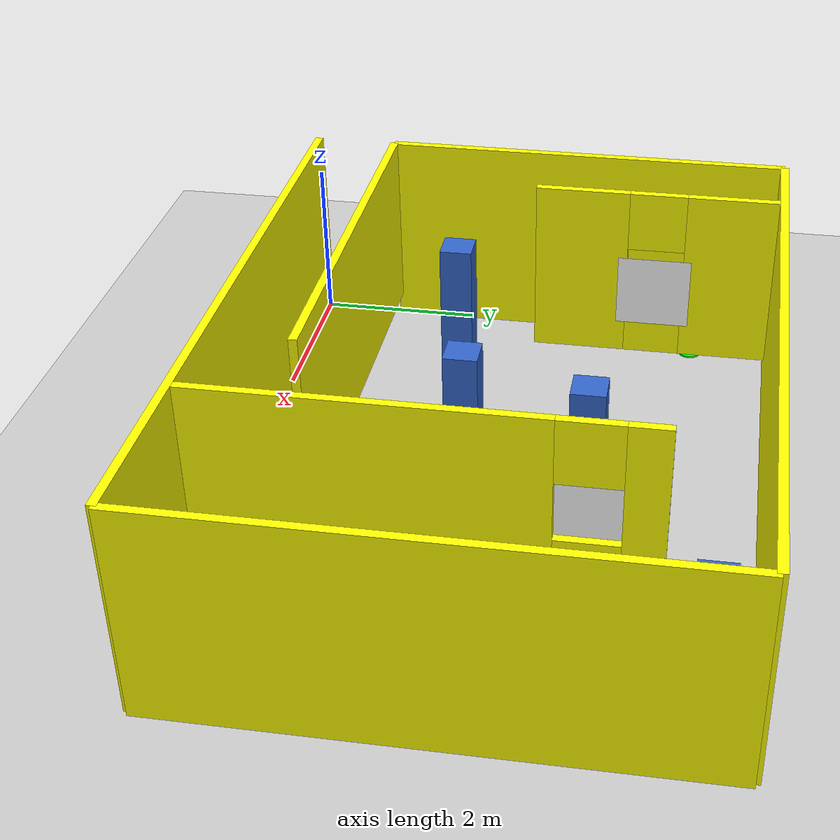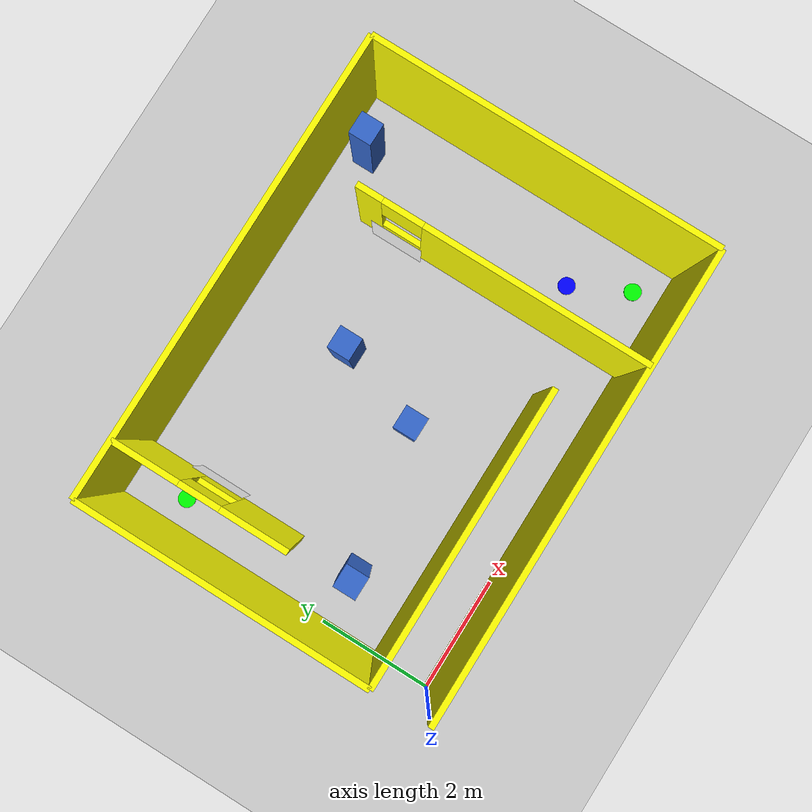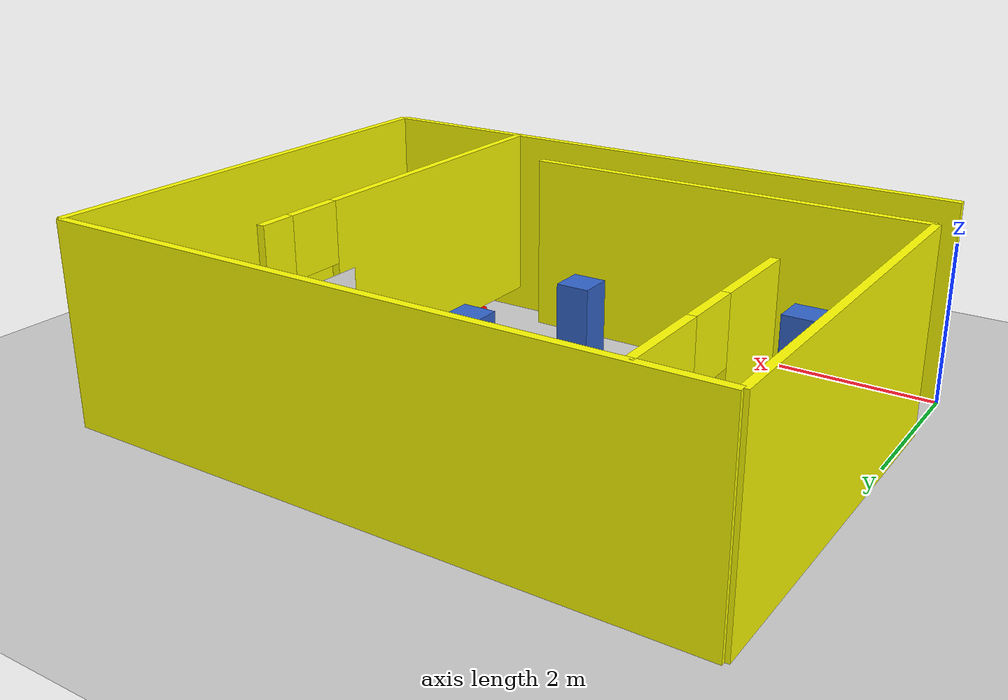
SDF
<sdf version="1.9">
 <world name="drone_competition_v1">
  <physics type="ode">
   <max_step_size>0.004</max_step_size>
   <real_time_factor>1.0</real_time_factor>
   <real_time_update_rate>250</real_time_update_rate>
  </physics>
  <gravity>0 0 -9.8</gravity>
  <magnetic_field>6e-06 2.3e-05 -4.2e-05</magnetic_field>
  <atmosphere type="adiabatic"/>
  <scene>
   <grid>false</grid>
   <ambient>0.4 0.4 0.4 1</ambient>
   <background>0.7 0.7 0.7 1</background>
   <shadows>true</shadows>
  </scene>
  <model name="ground_plane">
   <static>true</static>
   <link name="link">
    <collision name="collision">
     <geometry><plane><normal>0 0 1</normal><size>1 1</size></plane></geometry>
    </collision>
    <visual name="visual">
     <geometry><plane><normal>0 0 1</normal><size>500 500</size></plane></geometry>
     <material>
      <ambient>0.8 0.8 0.8 1</ambient>
      <diffuse>0.8 0.8 0.8 1</diffuse>
      <specular>0.8 0.8 0.8 1</specular>
     </material>
    </visual>
    <inertial>
     <mass>1</mass>
     <inertia><ixx>1</ixx><ixy>0</ixy><ixz>0</ixz><iyy>1</iyy><iyz>0</iyz><izz>1</izz></inertia>
    </inertial>
   </link>
  </model>
  <model name="boundary">
   <static>true</static>
   <link name="walls">
    <collision name="south">
     <pose>4 0 1.25 0 0 0</pose>
     <geometry><box><size>8 0.1 2.5</size></box></geometry>
    </collision>
    <visual name="south_v">
     <pose>4 0 1.25 0 0 0</pose>
     <geometry><box><size>8 0.1 2.5</size></box></geometry>
     <material><ambient>1 1 0 1</ambient><diffuse>1 1 0 1</diffuse><specular>0.1 0.1 0.1 1</specular></material>
    </visual>
    <collision name="north">
     <pose>4 6 1.25 0 0 0</pose>
     <geometry><box><size>8 0.1 2.5</size></box></geometry>
    </collision>
    <visual name="north_v">
     <pose>4 6 1.25 0 0 0</pose>
     <geometry><box><size>8 0.1 2.5</size></box></geometry>
     <material><ambient>1 1 0 1</ambient><diffuse>1 1 0 1</diffuse></material>
    </visual>
    <collision name="west">
     <pose>0 3.5 1.25 0 0 0</pose>
     <geometry><box><size>0.1 5 2.5</size></box></geometry>
    </collision>
    <visual name="west_v">
     <pose>0 3.5 1.25 0 0 0</pose>
     <geometry><box><size>0.1 5 2.5</size></box></geometry>
     <material><ambient>1 1 0 1</ambient><diffuse>1 1 0 1</diffuse></material>
    </visual>
    <collision name="east">
     <pose>8 3 1.25 0 0 0</pose>
     <geometry><box><size>0.1 6 2.5</size></box></geometry>
    </collision>
    <visual name="east_v">
     <pose>8 3 1.25 0 0 0</pose>
     <geometry><box><size>0.1 6 2.5</size></box></geometry>
     <material><ambient>1 1 0 1</ambient><diffuse>1 1 0 1</diffuse></material>
    </visual>
   </link>
  </model>
  <model name="partition_walls">
   <static>true</static>
   <link name="wall_a">
    <pose>2.5 1 1.4 0 0 0</pose>
    <collision name="c"><geometry><box><size>5.0 0.1 2.2</size></box></geometry></collision>
    <visual name="v">
     <geometry><box><size>5.0 0.1 2.2</size></box></geometry>
     <material><ambient>1 1 0 1</ambient><diffuse>1 1 0 1</diffuse><specular>0.1 0.1 0.1 1</specular></material>
    </visual>
   </link>
   <visual name="door_frame_front">
    <pose>-0.051 1.7 0 0 0 0</pose>
    <geometry><box><size>0.001 1.2 1.2</size></box></geometry>
    <material><pbr><metal><albedo_map>door.png</albedo_map></metal></pbr></material>
   </visual>
   <link name="wall_b">
    <pose>6 2.5 1.4 0 0 0</pose>
    <collision name="collision_left">
     <pose>0 -0.575 0 0 0 0</pose>
     <geometry><box><size>0.1 3.85 2.2</size></box></geometry>
    </collision>
    <visual name="visual_left">
     <pose>0 -0.575 0 0 0 0</pose>
     <geometry><box><size>0.1 3.85 2.2</size></box></geometry>
     <material><ambient>1 1 0 1</ambient><diffuse>1 1 0 1</diffuse></material>
    </visual>
    <collision name="collision_right">
     <pose>0 2.275 0 0 0 0</pose>
     <geometry><box><size>0.1 0.45 2.2</size></box></geometry>
    </collision>
    <visual name="visual_right">
     <pose>0 2.275 0 0 0 0</pose>
     <geometry><box><size>0.1 0.45 2.2</size></box></geometry>
     <material><ambient>1 1 0 1</ambient><diffuse>1 1 0 1</diffuse></material>
    </visual>
    <collision name="collision_top">
     <pose>0 1.7 0.725 0 0 0</pose>
     <geometry><box><size>0.1 0.7 0.75</size></box></geometry>
    </collision>
    <visual name="visual_top">
     <pose>0 1.7 0.725 0 0 0</pose>
     <geometry><box><size>0.1 0.7 0.75</size></box></geometry>
     <material><ambient>1 1 0 1</ambient><diffuse>1 1 0 1</diffuse></material>
    </visual>
    <collision name="collision_bottom">
     <pose>0 1.7 -0.725 0 0 0</pose>
     <geometry><box><size>0.1 0.7 0.75</size></box></geometry>
    </collision>
    <visual name="visual_bottom">
     <pose>0 1.7 -0.725 0 0 0</pose>
     <geometry><box><size>0.1 0.7 0.75</size></box></geometry>
     <material><ambient>1 1 0 1</ambient><diffuse>1 1 0 1</diffuse></material>
    </visual>
   </link>
   <link name="wall_c">
    <pose>1 4.5 1.4 0 0 0</pose>
    <collision name="collision_left">
     <pose>0 -0.925 0 0 0 0</pose>
     <geometry><box><size>0.1 1.15 2.2</size></box></geometry>
    </collision>
    <visual name="visual_left">
     <pose>0 -0.925 0 0 0 0</pose>
     <geometry><box><size>0.1 1.15 2.2</size></box></geometry>
     <material><ambient>1 1 0 1</ambient><diffuse>1 1 0 1</diffuse></material>
    </visual>
    <collision name="collision_right">
     <pose>0 0.925 0 0 0 0</pose>
     <geometry><box><size>0.1 1.15 2.2</size></box></geometry>
    </collision>
    <visual name="visual_right">
     <pose>0 0.925 0 0 0 0</pose>
     <geometry><box><size>0.1 1.15 2.2</size></box></geometry>
     <material><ambient>1 1 0 1</ambient><diffuse>1 1 0 1</diffuse></material>
    </visual>
    <collision name="collision_top">
     <pose>0 0 0.725 0 0 0</pose>
     <geometry><box><size>0.1 0.7 0.75</size></box></geometry>
    </collision>
    <visual name="visual_top">
     <pose>0 0 0.725 0 0 0</pose>
     <geometry><box><size>0.1 0.7 0.75</size></box></geometry>
     <material><ambient>1 1 0 1</ambient><diffuse>1 1 0 1</diffuse></material>
    </visual>
    <collision name="collision_bottom">
     <pose>0 0 -0.725 0 0 0</pose>
     <geometry><box><size>0.1 0.7 0.75</size></box></geometry>
    </collision>
    <visual name="visual_bottom">
     <pose>0 0 -0.725 0 0 0</pose>
     <geometry><box><size>0.1 0.7 0.75</size></box></geometry>
     <material><ambient>1 1 0 1</ambient><diffuse>1 1 0 1</diffuse></material>
    </visual>
   </link>
  </model>
  <model name="static_obstacles">
   <static>true</static>
   <link name="O1">
    <pose>1.0 2.0 0.8 0 0 0</pose>
    <collision name="c"><geometry><box><size>0.4 0.4 1.6</size></box></geometry></collision>
    <visual name="v">
     <geometry><box><size>0.4 0.4 1.6</size></box></geometry>
     <material>
      <ambient>0.2 0.4 0.8 1</ambient>
      <diffuse>0.2 0.4 0.8 1</diffuse>
      <specular>0.1 0.1 0.1 1</specular>
     </material>
    </visual>
   </link>
   <link name="O3">
    <pose>4.0 4.0 0.8 0 0 0</pose>
    <collision name="c"><geometry><box><size>0.4 0.4 1.6</size></box></geometry></collision>
    <visual name="v">
     <geometry><box><size>0.4 0.4 1.6</size></box></geometry>
     <material>
      <ambient>0.2 0.4 0.8 1</ambient>
      <diffuse>0.2 0.4 0.8 1</diffuse>
      <specular>0.1 0.1 0.1 1</specular>
     </material>
    </visual>
   </link>
   <link name="O4">
    <pose>3.5 2.5 0.8 0 0 0</pose>
    <collision name="c"><geometry><box><size>0.4 0.4 1.6</size></box></geometry></collision>
    <visual name="v">
     <geometry><box><size>0.4 0.4 1.6</size></box></geometry>
     <material>
      <ambient>0.2 0.4 0.8 1</ambient>
      <diffuse>0.2 0.4 0.8 1</diffuse>
      <specular>0.1 0.1 0.1 1</specular>
     </material>
    </visual>
   </link>
   <link name="O5">
    <pose>7.0 5.5 0.8 0 0 0</pose>
    <collision name="c"><geometry><box><size>0.4 0.4 1.6</size></box></geometry></collision>
    <visual name="v">
     <geometry><box><size>0.4 0.4 1.6</size></box></geometry>
     <material>
      <ambient>0.2 0.4 0.8 1</ambient>
      <diffuse>0.2 0.4 0.8 1</diffuse>
      <specular>0.1 0.1 0.1 1</specular>
     </material>
    </visual>
   </link>
  </model>
  <model name="Area_A_Task">
   <static>true</static>
   <pose>0.5 5.0 0.011 0 0 0</pose>
   <link name="target_pad">
    <visual name="v">
     <geometry><cylinder><radius>0.15</radius><length>0.02</length></cylinder></geometry>
     <material><ambient>0 1 0 1</ambient><diffuse>0 1 0 1</diffuse><specular>0.1 0.1 0.1 1</specular></material>
    </visual>
   </link>
  </model>
  <model name="Area_B_Task">
   <static>true</static>
   <link name="red_circle">
    <pose>6.4 0.5 0.01 0 0 0</pose>
    <visual name="v">
     <geometry><cylinder><radius>0.15</radius><length>0.02</length></cylinder></geometry>
     <material><ambient>1 0 0 1</ambient><diffuse>1 0 0 1</diffuse></material>
    </visual>
   </link>
   <link name="green_circle">
    <pose>7.4 0.5 0.01 0 0 0</pose>
    <visual name="v">
     <geometry><cylinder><radius>0.15</radius><length>0.02</length></cylinder></geometry>
     <material><ambient>0 1 0 1</ambient><diffuse>0 1 0 1</diffuse></material>
    </visual>
   </link>
   <link name="blue_circle">
    <pose>6.9 1.5 0.01 0 0 0</pose>
    <visual name="v">
     <geometry><cylinder><radius>0.15</radius><length>0.02</length></cylinder></geometry>
     <material><ambient>0 0 1 1</ambient><diffuse>0 0 1 1</diffuse></material>
    </visual>
   </link>
  </model>
  <light name="sunUTC" type="directional">
   <pose>0 0 500 0 -0 0</pose>
   <intensity>1</intensity>
   <direction>0.001 0.625 -0.78</direction>
   <diffuse>0.904 0.904 0.904 1</diffuse>
   <specular>0.271 0.271 0.271 1</specular>
   <attenuation><range>2000</range><linear>0</linear><constant>1</constant><quadratic>0</quadratic></attenuation>
   <spot><inner_angle>0</inner_angle><outer_angle>0</outer_angle><falloff>0</falloff></spot>
  </light>
  <spherical_coordinates>
   <surface_model>EARTH_WGS84</surface_model>
   <world_frame_orientation>ENU</world_frame_orientation>
   <latitude_deg>47.397971057728974</latitude_deg>
   <longitude_deg>8.546163739800146</longitude_deg>
   <elevation>0</elevation>
  </spherical_coordinates>
  <include><uri>model://door</uri><pose>5.8 4.2 1.25 0 -1.57 0</pose><name>door_b</name></include>
  <include><uri>model://door</uri><pose>1.2 4.5 1.25 0.0 1.57 0</pose><name>door_c</name></include>
 </world>
</sdf>

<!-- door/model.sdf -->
<sdf version='1.9'>
  <model name='door'>
    <static>true</static>
    <pose>0 0 0 0 0 0</pose> <!-- 建议设为原点，由 world 控制位置 -->
    <link name='base'>
      <visual name='base_visual'>
        <geometry>
          <plane>
            <normal>0 0 1</normal>
            <size>0.9 0.9</size>
          </plane>
        </geometry>
        <material>
          <diffuse>1 1 1 1</diffuse>
          <specular>0.4 0.4 0.4 1</specular>
          <pbr>
            <metal>
              <albedo_map>model://door/door.png</albedo_map>
            </metal>
          </pbr>
        </material>
      </visual>
    </link>
  </model>
</sdf>
